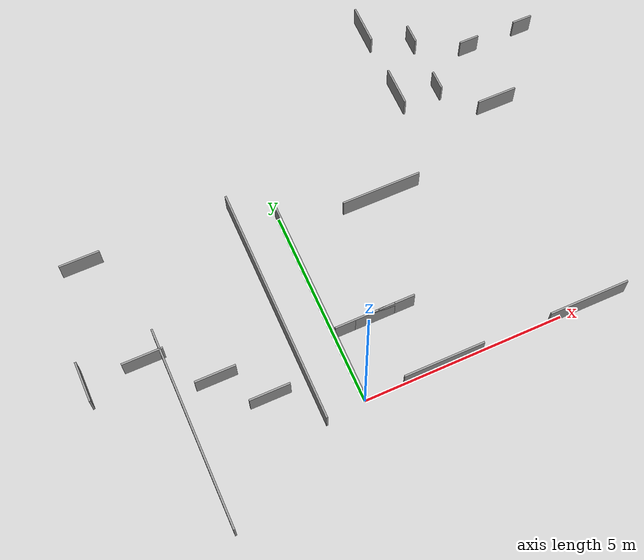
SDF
<sdf version="1.7">
 <world name="default">
  <model name="ground_plane">
   <static>1</static>
   <link name="link">
    <collision name="collision">
     <geometry><plane><normal>0 0 1</normal><size>100 100</size></plane></geometry>
     <surface><friction><ode><mu>100</mu><mu2>50</mu2></ode></friction></surface>
    </collision>
    <visual name="visual">
     <cast_shadows>0</cast_shadows>
     <geometry><plane><normal>0 0 1</normal><size>100 100</size></plane></geometry>
     <material>
      <script><uri>file://media/materials/scripts/gazebo.material</uri><name>Gazebo/Grey</name></script>
     </material>
    </visual>
   </link>
  </model>
  <light name="sun" type="directional">
   <pose>0 0 10 0 -0 0</pose>
   <diffuse>0.8 0.8 0.8 1</diffuse>
   <specular>0.2 0.2 0.2 1</specular>
   <attenuation>
    <range>1000</range>
    <constant>0.9</constant>
    <linear>0.01</linear>
    <quadratic>0.001</quadratic>
   </attenuation>
   <direction>-0.5 0.1 -0.9</direction>
   <spot><inner_angle>0</inner_angle><outer_angle>0</outer_angle><falloff>0</falloff></spot>
  </light>
  <scene><shadows>0</shadows><ambient>0.4 0.4 0.4 1</ambient><background>0.7 0.7 0.7 1</background></scene>
  <physics type="ode">
   <real_time_update_rate>1000</real_time_update_rate>
   <max_step_size>0.001</max_step_size>
   <real_time_factor>1</real_time_factor>
   <ode>
    <solver>
     <type>quick</type>
     <iters>150</iters>
     <precon_iters>0</precon_iters>
     <sor>1.4</sor>
     <use_dynamic_moi_rescaling>1</use_dynamic_moi_rescaling>
    </solver>
    <constraints>
     <cfm>1e-05</cfm>
     <erp>0.2</erp>
     <contact_max_correcting_vel>100</contact_max_correcting_vel>
     <contact_surface_layer>0.001</contact_surface_layer>
    </constraints>
   </ode>
  </physics>
  <gravity>0 0 -9.8</gravity>
  <magnetic_field>6e-06 2.3e-05 -4.2e-05</magnetic_field>
  <atmosphere type="adiabatic"/>
  <spherical_coordinates>
   <surface_model>EARTH_WGS84</surface_model>
   <latitude_deg>0</latitude_deg>
   <longitude_deg>0</longitude_deg>
   <elevation>0</elevation>
   <heading_deg>0</heading_deg>
  </spherical_coordinates>
  <model name="maze_built">
   <pose>0.462633 2.81339 0 0 -0 0</pose>
   <link name="Wall_Stage_1">
    <collision name="Wall_Stage_1_Collision">
     <geometry><box><size>1 0.045 0.6</size></box></geometry>
     <pose>0 0 0.300 0 -0 0</pose>
    </collision>
    <visual name="Wall_Stage_1_Visual">
     <pose>0 0 0.300 0 -0 0</pose>
     <geometry><box><size>1 0.045 0.6</size></box></geometry>
     <material>
      <script><uri>file://media/materials/scripts/gazebo.material</uri><name>Gazebo/Grey</name></script>
      <ambient>1 1 1 1</ambient>
     </material>
     <meta><layer>0</layer></meta>
    </visual>
    <pose>0.550122 -1.12784 0 0 -0 -3.13873</pose>
   </link>
   <link name="Wall_0">
    <collision name="Wall_0_Collision">
     <geometry><box><size>2 0.045 0.6</size></box></geometry>
     <pose>0 0 0.300 0 -0 0</pose>
    </collision>
    <visual name="Wall_0_Visual">
     <pose>0 0 0.300 0 -0 0</pose>
     <geometry><box><size>2 0.045 0.6</size></box></geometry>
     <material>
      <script><uri>file://media/materials/scripts/gazebo.material</uri><name>Gazebo/Grey</name></script>
      <ambient>1 1 1 1</ambient>
     </material>
     <meta><layer>0</layer></meta>
    </visual>
    <pose>0.550122 -1.12784 0 0 -0 -3.13873</pose>
   </link>
   <link name="Wall_1">
    <collision name="Wall_1_Collision">
     <geometry><box><size>5 0.045 0.6</size></box></geometry>
     <pose>0 0 0.300 0 -0 0</pose>
    </collision>
    <visual name="Wall_1_Visual">
     <pose>0 0 0.300 0 -0 0</pose>
     <geometry><box><size>5 0.045 0.6</size></box></geometry>
     <material>
      <script><uri>file://media/materials/scripts/gazebo.material</uri><name>Gazebo/Grey</name></script>
      <ambient>1 1 1 1</ambient>
     </material>
     <meta><layer>0</layer></meta>
    </visual>
    <pose>-0.493757 -0.215773 0 0 -0 1.5708</pose>
   </link>
   <link name="Wall_2">
    <collision name="Wall_2_Collision">
     <geometry><box><size>2 0.045 0.6</size></box></geometry>
     <pose>0 0 0.300 0 -0 0</pose>
    </collision>
    <visual name="Wall_2_Visual">
     <pose>0 0 0.300 0 -0 0</pose>
     <geometry><box><size>2 0.045 0.6</size></box></geometry>
     <material>
      <script><uri>file://media/materials/scripts/gazebo.material</uri><name>Gazebo/Grey</name></script>
      <ambient>1 1 1 1</ambient>
     </material>
     <meta><layer>0</layer></meta>
    </visual>
    <pose>2.01246 1.69872 0 0 -0 0</pose>
   </link>
   <link name="Wall_3_lower">
    <collision name="Wall_3_lower_Collision">
     <geometry><box><size>0.5 0.045 0.6</size></box></geometry>
     <pose>0 0 0.300 0 -0 0</pose>
    </collision>
    <visual name="Wall_3_lower_Visual">
     <pose>0 0 0.300 0 -0 0</pose>
     <geometry><box><size>0.5 0.045 0.6</size></box></geometry>
     <material>
      <script><uri>file://media/materials/scripts/gazebo.material</uri><name>Gazebo/Grey</name></script>
      <ambient>1 1 1 1</ambient>
     </material>
     <meta><layer>0</layer></meta>
    </visual>
    <pose>4.54874 3.87207 0 0 0 1.5708</pose>
   </link>
   <link name="Wall_3_upper">
    <collision name="Wall_3_upper_Collision">
     <geometry><box><size>0.5 0.045 0.6</size></box></geometry>
     <pose>0 0 0.300 0 -0 0</pose>
    </collision>
    <visual name="Wall_3_upper_Visual">
     <pose>0 0 0.300 0 -0 0</pose>
     <geometry><box><size>0.5 0.045 0.6</size></box></geometry>
     <material>
      <script><uri>file://media/materials/scripts/gazebo.material</uri><name>Gazebo/Grey</name></script>
      <ambient>1 1 1 1</ambient>
     </material>
     <meta><layer>0</layer></meta>
    </visual>
    <pose>4.54874 5.37207 0 0 0 1.5708</pose>
   </link>
   <link name="Wall_4_left">
    <collision name="Wall_4_left_Collision">
     <geometry><box><size>0.5 0.045 0.6</size></box></geometry>
     <pose>0 0 0.300 0 -0 0</pose>
    </collision>
    <visual name="Wall_4_left_Visual">
     <pose>0 0 0.300 0 -0 0</pose>
     <geometry><box><size>0.5 0.045 0.6</size></box></geometry>
     <material>
      <script><uri>file://media/materials/scripts/gazebo.material</uri><name>Gazebo/Grey</name></script>
      <ambient>1 1 1 1</ambient>
     </material>
     <meta><layer>0</layer></meta>
    </visual>
    <pose>5.79874 4.62207 0 0 0 0</pose>
   </link>
   <link name="Wall_4_right">
    <collision name="Wall_4_right_Collision">
     <geometry><box><size>0.5 0.045 0.6</size></box></geometry>
     <pose>0 0 0.300 0 -0 0</pose>
    </collision>
    <visual name="Wall_4_right_Visual">
     <pose>0 0 0.300 0 -0 0</pose>
     <geometry><box><size>0.5 0.045 0.6</size></box></geometry>
     <material>
      <script><uri>file://media/materials/scripts/gazebo.material</uri><name>Gazebo/Grey</name></script>
      <ambient>1 1 1 1</ambient>
     </material>
     <meta><layer>0</layer></meta>
    </visual>
    <pose>7.29874 4.62207 0 0 0 0</pose>
   </link>
   <link name="Wall_10">
    <collision name="Wall_10_Collision">
     <geometry><box><size>5 0.045 0.6</size></box></geometry>
     <pose>0 0 0.300 0 -0 0</pose>
    </collision>
    <visual name="Wall_10_Visual">
     <pose>0 0 0.300 0 -0 0</pose>
     <geometry><box><size>5 0.045 0.6</size></box></geometry>
     <material>
      <script><uri>file://media/materials/scripts/gazebo.material</uri><name>Gazebo/Grey</name></script>
      <ambient>1 1 1 1</ambient>
     </material>
     <meta><layer>0</layer></meta>
    </visual>
    <pose>-4.275 -1.9544 0 0 -0 1.5708</pose>
   </link>
   <link name="Wall_12_lower">
    <collision name="Wall_12_lower_Collision">
     <geometry><box><size>1 0.045 0.6</size></box></geometry>
     <pose>0 0 0.300 0 -0 0</pose>
    </collision>
    <visual name="Wall_12_lower_Visual">
     <pose>0 0 0.300 0 -0 0</pose>
     <geometry><box><size>1 0.045 0.6</size></box></geometry>
     <material>
      <script><uri>file://media/materials/scripts/gazebo.material</uri><name>Gazebo/Grey</name></script>
      <ambient>1 1 1 1</ambient>
     </material>
     <meta><layer>0</layer></meta>
    </visual>
    <pose>3.54874 4.12207 0 0 0 1.5708</pose>
   </link>
   <link name="Wall_12_upper">
    <collision name="Wall_12_upper_Collision">
     <geometry><box><size>1 0.045 0.6</size></box></geometry>
     <pose>0 0 0.300 0 -0 0</pose>
    </collision>
    <visual name="Wall_12_upper_Visual">
     <pose>0 0 0.300 0 -0 0</pose>
     <geometry><box><size>1 0.045 0.6</size></box></geometry>
     <material>
      <script><uri>file://media/materials/scripts/gazebo.material</uri><name>Gazebo/Grey</name></script>
      <ambient>1 1 1 1</ambient>
     </material>
     <meta><layer>0</layer></meta>
    </visual>
    <pose>3.54874 6.12207 0 0 0 1.5708</pose>
   </link>
   <link name="Wall_13">
    <collision name="Wall_13_Collision">
     <geometry><box><size>1 0.045 0.6</size></box></geometry>
     <pose>0 0 0.300 0 -0 0</pose>
    </collision>
    <visual name="Wall_13_Visual">
     <pose>0 0 0.300 0 -0 0</pose>
     <geometry><box><size>1 0.045 0.6</size></box></geometry>
     <material>
      <script><uri>file://media/materials/scripts/gazebo.material</uri><name>Gazebo/Grey</name></script>
      <ambient>1 1 1 1</ambient>
     </material>
     <meta><layer>0</layer></meta>
    </visual>
    <pose>-3.35 -1.0294 0 0 -0 0</pose>
   </link>
   <link name="Wall_11">
    <collision name="Wall_11_Collision">
     <geometry><box><size>1 0.045 0.6</size></box></geometry>
     <pose>0 0 0.300 0 -0 0</pose>
    </collision>
    <visual name="Wall_11_Visual">
     <pose>0 0 0.300 0 -0 0</pose>
     <geometry><box><size>1 0.045 0.6</size></box></geometry>
     <material>
      <script><uri>file://media/materials/scripts/gazebo.material</uri><name>Gazebo/Grey</name></script>
      <ambient>1 1 1 1</ambient>
     </material>
     <meta><layer>0</layer></meta>
    </visual>
    <pose>-6.125 -0.000145 0 0 -0 1.5708</pose>
   </link>
   <link name="Wall_15">
    <collision name="Wall_15_Collision">
     <geometry><box><size>1 0.045 0.6</size></box></geometry>
     <pose>0 0 0.300 0 -0 0</pose>
    </collision>
    <visual name="Wall_15_Visual">
     <pose>0 0 0.300 0 -0 0</pose>
     <geometry><box><size>1 0.045 0.6</size></box></geometry>
     <material>
      <script><uri>file://media/materials/scripts/gazebo.material</uri><name>Gazebo/Grey</name></script>
      <ambient>1 1 1 1</ambient>
     </material>
     <meta><layer>0</layer></meta>
    </visual>
    <pose>-2.39752 -1.92236 0 0 -0 0</pose>
   </link>
   <link name="Wall_16">
    <collision name="Wall_16_Collision">
     <geometry><box><size>6 0.045 0.6</size></box></geometry>
     <pose>0 0 0.300 0 -0 0</pose>
    </collision>
    <visual name="Wall_16_Visual">
     <pose>0 0 0.300 0 -0 0</pose>
     <geometry><box><size>6 0.045 0.6</size></box></geometry>
     <material>
      <script><uri>file://media/materials/scripts/gazebo.material</uri><name>Gazebo/Grey</name></script>
      <ambient>1 1 1 1</ambient>
     </material>
     <meta><layer>0</layer></meta>
    </visual>
    <pose>-1.47253 0.002642 0 0 -0 1.5708</pose>
   </link>
   <link name="Wall_5">
    <collision name="Wall_5_Collision">
     <geometry><box><size>1 0.045 0.6</size></box></geometry>
     <pose>0 0 0.300 0 -0 0</pose>
    </collision>
    <visual name="Wall_5_Visual">
     <pose>0 0 0.300 0 -0 0</pose>
     <geometry><box><size>1 0.045 0.6</size></box></geometry>
     <material>
      <script><uri>file://media/materials/scripts/gazebo.material</uri><name>Gazebo/Grey</name></script>
      <ambient>1 1 1 1</ambient>
     </material>
     <meta><layer>0</layer></meta>
    </visual>
    <pose>-5.2 2.87911 0 0 -0 0</pose>
   </link>
   <link name="Wall_6">
    <collision name="Wall_6_Collision">
     <geometry><box><size>1 0.045 0.6</size></box></geometry>
     <pose>0 0 0.300 0 -0 0</pose>
    </collision>
    <visual name="Wall_6_Visual">
     <pose>0 0 0.300 0 -0 0</pose>
     <geometry><box><size>1 0.045 0.6</size></box></geometry>
     <material>
      <script><uri>file://media/materials/scripts/gazebo.material</uri><name>Gazebo/Grey</name></script>
      <ambient>1 1 1 1</ambient>
     </material>
     <meta><layer>0</layer></meta>
    </visual>
    <pose>-4.7 0.029114 0 0 -0 3.14159</pose>
   </link>
   <link name="Wall_7">
    <collision name="Wall_7_Collision">
     <geometry><box><size>1 0.045 0.6</size></box></geometry>
     <pose>0 0 0.300 0 -0 0</pose>
    </collision>
    <visual name="Wall_7_Visual">
     <pose>0 0 0.300 0 -0 0</pose>
     <geometry><box><size>1 0.045 0.6</size></box></geometry>
     <material>
      <script><uri>file://media/materials/scripts/gazebo.material</uri><name>Gazebo/Grey</name></script>
      <ambient>1 1 1 1</ambient>
     </material>
     <meta><layer>0</layer></meta>
    </visual>
    <pose>5.7 2.87911 0 0 -0 0</pose>
   </link>
   <link name="Wall_8">
    <collision name="Wall_8_Collision">
     <geometry><box><size>2 0.045 0.6</size></box></geometry>
     <pose>0 0 0.300 0 -0 0</pose>
    </collision>
    <visual name="Wall_8_Visual">
     <pose>0 0 0.300 0 -0 0</pose>
     <geometry><box><size>2 0.045 0.6</size></box></geometry>
     <material>
      <script><uri>file://media/materials/scripts/gazebo.material</uri><name>Gazebo/Grey</name></script>
      <ambient>1 1 1 1</ambient>
     </material>
     <meta><layer>0</layer></meta>
    </visual>
    <pose>5.2 -2.82089 0 0 -0 3.14159</pose>
   </link>
   <link name="Wall_9">
    <collision name="Wall_9_Collision">
     <geometry><box><size>2 0.045 0.6</size></box></geometry>
     <pose>0 0 0.300 0 -0 0</pose>
    </collision>
    <visual name="Wall_9_Visual">
     <pose>0 0 0.300 0 -0 0</pose>
     <geometry><box><size>2 0.045 0.6</size></box></geometry>
     <material>
      <script><uri>file://media/materials/scripts/gazebo.material</uri><name>Gazebo/Grey</name></script>
      <ambient>1 1 1 1</ambient>
     </material>
     <meta><layer>0</layer></meta>
    </visual>
    <pose>1.5 -2.82089 0 0 -0 3.14159</pose>
   </link>
   <static>1</static>
  </model>
 </world>
</sdf>
